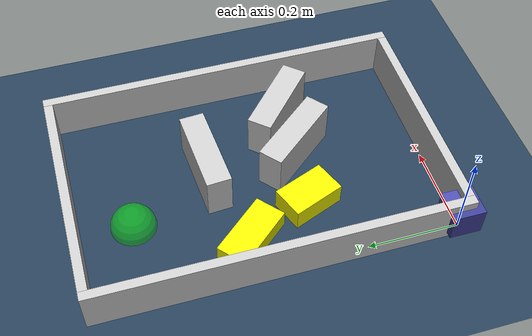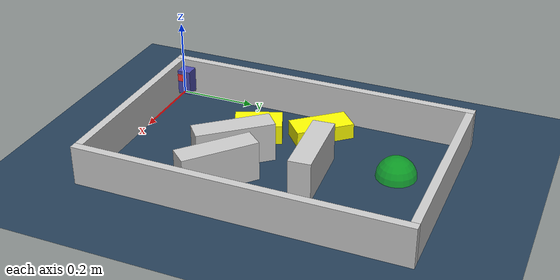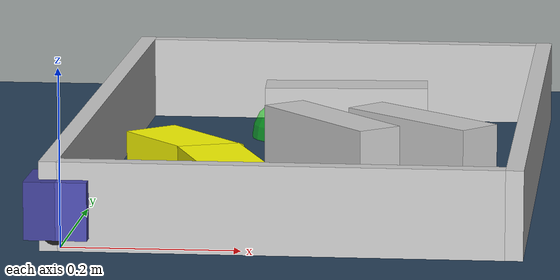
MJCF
<?xml version="1.0" ?>
<mujoco model="generated_environment">
  <option cone="elliptic" integrator="implicitfast" iterations="100" timestep="0.002"/>
  <default>
    <geom density="1"/>
  </default>
  <asset>
    <texture builtin="gradient" height="3072" rgb1="0.3 0.5 0.7" rgb2="0 0 0" type="skybox" width="512"/>
    <texture builtin="checker" height="300" mark="edge" markrgb="0.8 0.8 0.8" name="groundplane" rgb1="0.2 0.3 0.4" rgb2="0.1 0.2 0.3" type="2d" width="300"/>
    <material name="groundplane" reflectance="0.2" texrepeat="5 5" texture="groundplane" texuniform="true"/>
    <material name="robot" rgba="1.0 1.0 0.0 1.0"/>
  </asset>
  <include file="/home/dhruv/projects_dhruv/namo/namo_cpp/test_xml/little-car-modeling-package/assets/mjcf/little_car.xml"/>
  <worldbody>
    <light dir="0 0 -1" directional="true" pos="0 0 1.5"/>
    <geom condim="4" friction="0.5 0.005 0.001" material="groundplane" name="floor" size="0 0 0.05" type="plane"/>
    <body name="walls">
      <geom name="wall_1" condim="4" pos="-0.01 0.3875 0.05" friction="1 0.005 0.0001" rgba="0.800000011920929 0.800000011920929 0.800000011920929 1.0" size="0.01 0.40750000000000003 0.05" type="box"/>
      <geom name="wall_2" condim="4" pos="0.5 0.3875 0.05" friction="1 0.005 0.0001" rgba="0.800000011920929 0.800000011920929 0.800000011920929 1.0" size="0.01 0.40750000000000003 0.05" type="box"/>
      <geom name="wall_3" condim="4" pos="0.245 -0.01 0.05" friction="1 0.005 0.0001" rgba="0.800000011920929 0.800000011920929 0.800000011920929 1.0" size="0.245 0.01 0.05" type="box"/>
      <geom name="wall_4" condim="4" pos="0.245 0.785 0.05" friction="1 0.005 0.0001" rgba="0.800000011920929 0.800000011920929 0.800000011920929 1.0" size="0.245 0.01 0.05" type="box"/>
    </body>
    <body name="obstacle_1_movable">
      <geom name="obstacle_1_movable" condim="4" pos="0.08259010185788852 0.43127122695102854 0.02" quat="-0.34842526106172916 0 0 0.9373365657297628" friction="1 0.005 0.0001" rgba="1 1 0 1" size="0.035 0.075 0.02" type="box" mass="0.1"/>
      <joint type="free"/>
    </body>
    <body name="obstacle_2_movable">
      <geom name="obstacle_2_movable" condim="4" pos="0.14383843062905094 0.2865095119030086 0.025" quat="-0.18489742373667914 0 0 0.9827578250492534" friction="1 0.005 0.0001" rgba="1 1 0 1" size="0.0375 0.06 0.025" type="box" mass="0.1"/>
      <joint type="free"/>
    </body>
    <body name="wall_5">
      <geom name="wall_5" condim="4" pos="0.2740678437101565 0.47942601532074575 0.05" quat="0.682135403572385 0 0 0.7312258824693908" friction="1 0.005 0.0001" rgba="0.800000011920929 0.800000011920929 0.800000011920929 1.0" size="0.0275 0.0975 0.05" type="box"/>
    </body>
    <body name="wall_6">
      <geom name="wall_6" condim="4" pos="0.27359661684360626 0.2781452663322719 0.05" quat="-0.34269265126321735 0 0 0.9394475753176368" friction="1 0.005 0.0001" rgba="0.800000011920929 0.800000011920929 0.800000011920929 1.0" size="0.0275 0.0975 0.05" type="box"/>
    </body>
    <body name="wall_7">
      <geom name="wall_7" condim="4" pos="0.37852046605712636 0.28555227434888875 0.05" quat="0.35616086108236306 0 0 0.9344246577616997" friction="1 0.005 0.0001" rgba="0.800000011920929 0.800000011920929 0.800000011920929 1.0" size="0.095 0.0275 0.05" type="box"/>
    </body>
    <site name="goal" type="sphere" size="0.05 0.05 0.05" rgba="0 1 0 0.5" pos="0.18865200000000001 0.661089 0.0"/>
  </worldbody>
</mujoco>

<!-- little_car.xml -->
<mujoco model="little_car">
  <compiler angle="radian" autolimits="true"/>
  <default>
    <geom condim="4"/>
    <joint damping="0.01" armature="0.0001"/>
  </default>
  <worldbody>
    <body name="car" pos="0 0 0.010000">
      <freejoint name="car_freejoint"/>
      <inertial pos="0.000000 0 0.037500" mass="0.350000"
                diaginertia="0.000266 0.000266 0.000286"/>
      <geom name="front_chassis_collision" type="box" pos="0.017500 0 0.037500"
            size="0.017500 0.035000 0.032500"
            rgba="0.3 0.3 0.7 1"/>
      <geom name="rear_chassis_collision" type="box" pos="-0.017500 0 0.037500"
            size="0.017500 0.035000 0.032500"
            rgba="0.25 0.25 0.6 1"/>
      <geom name="front_marker" type="box" pos="0.034000 0 0.050500"
            size="0.002000 0.015000 0.010000"
            rgba="1.0 0.2 0.2 1" contype="0" conaffinity="0"/>

      <body name="rear_support_body" pos="-0.030000 0.000000 0.002500">
        <joint name="rear_caster_joint" type="ball" damping="0.0001"/>
        <inertial pos="0 0 0" mass="0.025000"
                  diaginertia="0.000001 0.000001 0.000001"/>
        <geom name="rear_support" type="sphere"
              pos="0 0 0"
              size="0.002500"
              friction="0.000000 0.000000 0.000000"
              rgba="0.7 0.1 0.1 1"/>
      </body>

      <body name="front_support_body" pos="0.030000 0.000000 0.002500">
        <joint name="front_caster_joint" type="ball" damping="0.0001"/>
        <inertial pos="0 0 0" mass="0.025000"
                  diaginertia="0.000001 0.000001 0.000001"/>
        <geom name="front_support" type="sphere"
              pos="0 0 0"
              size="0.002500"
              friction="0.000000 0.000000 0.000000"
              rgba="0.1 0.7 0.1 1"/>
      </body>

      <body name="left_wheel" pos="0.000000 0.034000 0.015000">
        <inertial pos="0 0 0" mass="0.050000"
                  diaginertia="0.000003 0.000006 0.000003"/>
        <joint name="left_wheel_joint" type="hinge" axis="0 1 0"/>
        <geom name="left_wheel_collision" type="cylinder" size="0.015000 0.000500"
              euler="1.57079632679 0 0" rgba="0.1 0.1 0.1 1"/>
      </body>

      <body name="right_wheel" pos="0.000000 -0.034000 0.015000">
        <inertial pos="0 0 0" mass="0.050000"
                  diaginertia="0.000003 0.000006 0.000003"/>
        <joint name="right_wheel_joint" type="hinge" axis="0 1 0"/>
        <geom name="right_wheel_collision" type="cylinder" size="0.015000 0.000500"
              euler="1.57079632679 0 0" rgba="0.1 0.1 0.1 1"/>
      </body>
    </body>
  </worldbody>
  <contact>
    <exclude body1="car" body2="left_wheel"/>
    <exclude body1="car" body2="right_wheel"/>
  </contact>
  <actuator>
    <velocity name="left_wheel_drive" joint="left_wheel_joint"
              ctrlrange="-25.000000 25.000000"
              kv="0.750000" forcerange="-0.500000 0.500000"/>
    <velocity name="right_wheel_drive" joint="right_wheel_joint"
              ctrlrange="-25.000000 25.000000"
              kv="0.750000" forcerange="-0.500000 0.500000"/>
  </actuator>
</mujoco>
